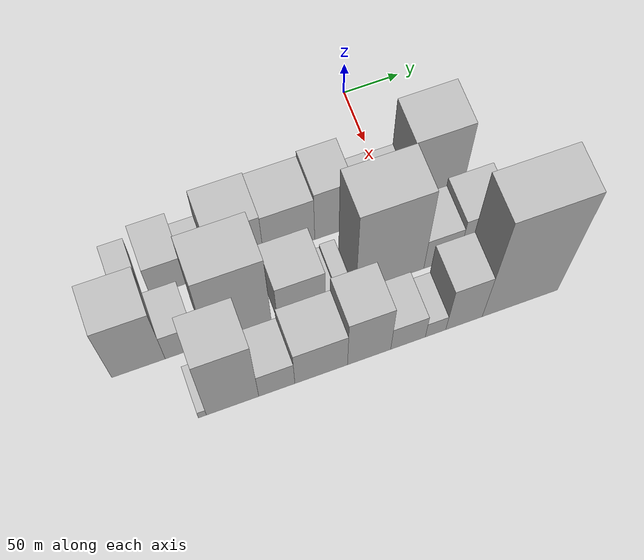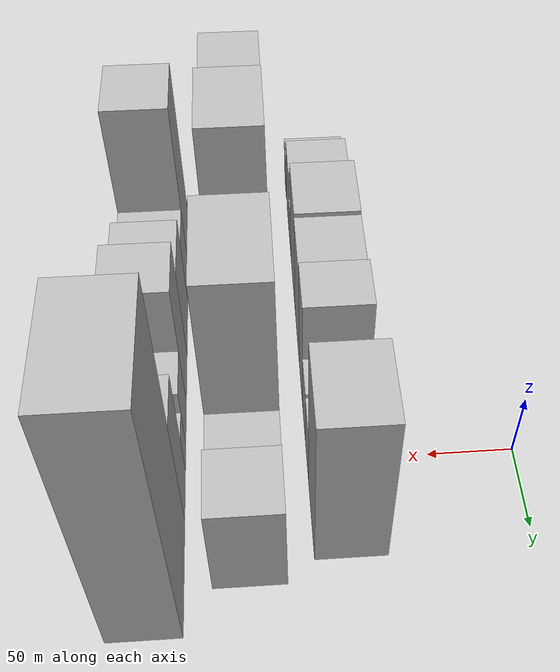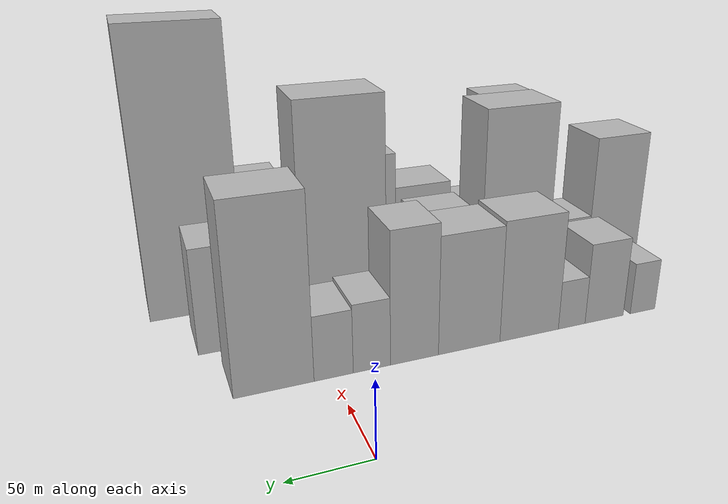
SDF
<sdf version="1.6">
 <world name="default">
  <model name="building_10">
   <static>1</static>
   <pose>100.0000 -229.9270 0 0.000000 0.000000 0.000000</pose>
   <link name="link">
    <pose>0 0 19.50 0 0 0</pose>
    <collision name="collision"><geometry><box><size>40.0000 21.1032 39.0000</size></box></geometry></collision>
    <visual name="visual">
     <cast_shadows>0</cast_shadows>
     <geometry><box><size>40.0000 21.1032 39.0000</size></box></geometry>
     <material>
      <script>
       <uri>model://HANNAS_wall/materials/scripts</uri>
       <uri>model://HANNAS_wall/materials/textures</uri>
       <name>vrc/HANNAS_wall</name>
      </script>
     </material>
    </visual>
   </link>
  </model>
  <model name="building_11">
   <static>1</static>
   <pose>100.0000 -197.5633 0 0.000000 0.000000 0.000000</pose>
   <link name="link">
    <pose>0 0 30.00 0 0 0</pose>
    <collision name="collision"><geometry><box><size>40.0000 31.6240 60.0000</size></box></geometry></collision>
    <visual name="visual">
     <cast_shadows>0</cast_shadows>
     <geometry><box><size>40.0000 31.6240 60.0000</size></box></geometry>
     <material>
      <script>
       <uri>model://HANNAS_wall/materials/scripts</uri>
       <uri>model://HANNAS_wall/materials/textures</uri>
       <name>vrc/HANNAS_wall</name>
      </script>
     </material>
    </visual>
   </link>
  </model>
  <model name="building_12">
   <static>1</static>
   <pose>100.0000 -171.0606 0 0.000000 0.000000 0.000000</pose>
   <link name="link">
    <pose>0 0 18.00 0 0 0</pose>
    <collision name="collision"><geometry><box><size>40.0000 21.3814 36.0000</size></box></geometry></collision>
    <visual name="visual">
     <cast_shadows>0</cast_shadows>
     <geometry><box><size>40.0000 21.3814 36.0000</size></box></geometry>
     <material>
      <script>
       <uri>model://HANNAS_wall/materials/scripts</uri>
       <uri>model://HANNAS_wall/materials/textures</uri>
       <name>vrc/HANNAS_wall</name>
      </script>
     </material>
    </visual>
   </link>
  </model>
  <model name="building_13">
   <static>1</static>
   <pose>100.0000 -137.8540 0 0.000000 0.000000 0.000000</pose>
   <link name="link">
    <pose>0 0 43.50 0 0 0</pose>
    <collision name="collision"><geometry><box><size>40.0000 45.0318 87.0000</size></box></geometry></collision>
    <visual name="visual">
     <cast_shadows>0</cast_shadows>
     <geometry><box><size>40.0000 45.0318 87.0000</size></box></geometry>
     <material>
      <script>
       <uri>model://HANNAS_wall/materials/scripts</uri>
       <uri>model://HANNAS_wall/materials/textures</uri>
       <name>vrc/HANNAS_wall</name>
      </script>
     </material>
    </visual>
   </link>
  </model>
  <model name="building_14">
   <static>1</static>
   <pose>100.0000 -93.0057 0 0.000000 0.000000 0.000000</pose>
   <link name="link">
    <pose>0 0 42.00 0 0 0</pose>
    <collision name="collision"><geometry><box><size>40.0000 44.6648 84.0000</size></box></geometry></collision>
    <visual name="visual">
     <cast_shadows>0</cast_shadows>
     <geometry><box><size>40.0000 44.6648 84.0000</size></box></geometry>
     <material>
      <script>
       <uri>model://HANNAS_wall/materials/scripts</uri>
       <uri>model://HANNAS_wall/materials/textures</uri>
       <name>vrc/HANNAS_wall</name>
      </script>
     </material>
    </visual>
   </link>
  </model>
  <model name="building_15">
   <static>1</static>
   <pose>100.0000 -54.0988 0 0.000000 0.000000 0.000000</pose>
   <link name="link">
    <pose>0 0 46.50 0 0 0</pose>
    <collision name="collision"><geometry><box><size>40.0000 33.1490 93.0000</size></box></geometry></collision>
    <visual name="visual">
     <cast_shadows>0</cast_shadows>
     <geometry><box><size>40.0000 33.1490 93.0000</size></box></geometry>
     <material>
      <script>
       <uri>model://HANNAS_wall/materials/scripts</uri>
       <uri>model://HANNAS_wall/materials/textures</uri>
       <name>vrc/HANNAS_wall</name>
      </script>
     </material>
    </visual>
   </link>
  </model>
  <model name="building_16">
   <static>1</static>
   <pose>100.0000 -25.1981 0 0.000000 0.000000 0.000000</pose>
   <link name="link">
    <pose>0 0 24.00 0 0 0</pose>
    <collision name="collision"><geometry><box><size>40.0000 24.6524 48.0000</size></box></geometry></collision>
    <visual name="visual">
     <cast_shadows>0</cast_shadows>
     <geometry><box><size>40.0000 24.6524 48.0000</size></box></geometry>
     <material>
      <script>
       <uri>model://HANNAS_wall/materials/scripts</uri>
       <uri>model://HANNAS_wall/materials/textures</uri>
       <name>vrc/HANNAS_wall</name>
      </script>
     </material>
    </visual>
   </link>
  </model>
  <model name="building_17">
   <static>1</static>
   <pose>100.0000 -0.3013 0 0.000000 0.000000 0.000000</pose>
   <link name="link">
    <pose>0 0 22.50 0 0 0</pose>
    <collision name="collision"><geometry><box><size>40.0000 25.1413 45.0000</size></box></geometry></collision>
    <visual name="visual">
     <cast_shadows>0</cast_shadows>
     <geometry><box><size>40.0000 25.1413 45.0000</size></box></geometry>
     <material>
      <script>
       <uri>model://HANNAS_wall/materials/scripts</uri>
       <uri>model://HANNAS_wall/materials/textures</uri>
       <name>vrc/HANNAS_wall</name>
      </script>
     </material>
    </visual>
   </link>
  </model>
  <model name="building_18">
   <static>1</static>
   <pose>100.0000 36.9575 0 0.000000 0.000000 0.000000</pose>
   <link name="link">
    <pose>0 0 63.00 0 0 0</pose>
    <collision name="collision"><geometry><box><size>40.0000 49.3762 126.0000</size></box></geometry></collision>
    <visual name="visual">
     <cast_shadows>0</cast_shadows>
     <geometry><box><size>40.0000 49.3762 126.0000</size></box></geometry>
     <material>
      <script>
       <uri>model://HANNAS_wall/materials/scripts</uri>
       <uri>model://HANNAS_wall/materials/textures</uri>
       <name>vrc/HANNAS_wall</name>
      </script>
     </material>
    </visual>
   </link>
  </model>
  <model name="building_47">
   <static>1</static>
   <pose>155.0000 -240.4129 0 0.000000 0.000000 0.000000</pose>
   <link name="link">
    <pose>0 0 57.00 0 0 0</pose>
    <collision name="collision"><geometry><box><size>40.0000 44.6639 114.0000</size></box></geometry></collision>
    <visual name="visual">
     <cast_shadows>0</cast_shadows>
     <geometry><box><size>40.0000 44.6639 114.0000</size></box></geometry>
     <material>
      <script>
       <uri>model://HANNAS_wall/materials/scripts</uri>
       <uri>model://HANNAS_wall/materials/textures</uri>
       <name>vrc/HANNAS_wall</name>
      </script>
     </material>
    </visual>
   </link>
  </model>
  <model name="building_48">
   <static>1</static>
   <pose>155.0000 -204.3218 0 0.000000 0.000000 0.000000</pose>
   <link name="link">
    <pose>0 0 27.00 0 0 0</pose>
    <collision name="collision"><geometry><box><size>40.0000 27.5182 54.0000</size></box></geometry></collision>
    <visual name="visual">
     <cast_shadows>0</cast_shadows>
     <geometry><box><size>40.0000 27.5182 54.0000</size></box></geometry>
     <material>
      <script>
       <uri>model://HANNAS_wall/materials/scripts</uri>
       <uri>model://HANNAS_wall/materials/textures</uri>
       <name>vrc/HANNAS_wall</name>
      </script>
     </material>
    </visual>
   </link>
  </model>
  <model name="building_49">
   <static>1</static>
   <pose>155.0000 -155.7295 0 0.000000 0.000000 0.000000</pose>
   <link name="link">
    <pose>0 0 72.00 0 0 0</pose>
    <collision name="collision"><geometry><box><size>40.0000 55.6664 144.0000</size></box></geometry></collision>
    <visual name="visual">
     <cast_shadows>0</cast_shadows>
     <geometry><box><size>40.0000 55.6664 144.0000</size></box></geometry>
     <material>
      <script>
       <uri>model://HANNAS_wall/materials/scripts</uri>
       <uri>model://HANNAS_wall/materials/textures</uri>
       <name>vrc/HANNAS_wall</name>
      </script>
     </material>
    </visual>
   </link>
  </model>
  <model name="building_50">
   <static>1</static>
   <pose>155.0000 -102.1150 0 0.000000 0.000000 0.000000</pose>
   <link name="link">
    <pose>0 0 36.00 0 0 0</pose>
    <collision name="collision"><geometry><box><size>40.0000 41.5627 72.0000</size></box></geometry></collision>
    <visual name="visual">
     <cast_shadows>0</cast_shadows>
     <geometry><box><size>40.0000 41.5627 72.0000</size></box></geometry>
     <material>
      <script>
       <uri>model://HANNAS_wall/materials/scripts</uri>
       <uri>model://HANNAS_wall/materials/textures</uri>
       <name>vrc/HANNAS_wall</name>
      </script>
     </material>
    </visual>
   </link>
  </model>
  <model name="building_51">
   <static>1</static>
   <pose>155.0000 -76.7715 0 0.000000 0.000000 0.000000</pose>
   <link name="link">
    <pose>0 0 10.50 0 0 0</pose>
    <collision name="collision"><geometry><box><size>40.0000 9.1243 21.0000</size></box></geometry></collision>
    <visual name="visual">
     <cast_shadows>0</cast_shadows>
     <geometry><box><size>40.0000 9.1243 21.0000</size></box></geometry>
     <material>
      <script>
       <uri>model://HANNAS_wall/materials/scripts</uri>
       <uri>model://HANNAS_wall/materials/textures</uri>
       <name>vrc/HANNAS_wall</name>
      </script>
     </material>
    </visual>
   </link>
  </model>
  <model name="building_52">
   <static>1</static>
   <pose>155.0000 -65.6060 0 0.000000 0.000000 0.000000</pose>
   <link name="link">
    <pose>0 0 13.50 0 0 0</pose>
    <collision name="collision"><geometry><box><size>40.0000 13.2067 27.0000</size></box></geometry></collision>
    <visual name="visual">
     <cast_shadows>0</cast_shadows>
     <geometry><box><size>40.0000 13.2067 27.0000</size></box></geometry>
     <material>
      <script>
       <uri>model://HANNAS_wall/materials/scripts</uri>
       <uri>model://HANNAS_wall/materials/textures</uri>
       <name>vrc/HANNAS_wall</name>
      </script>
     </material>
    </visual>
   </link>
  </model>
  <model name="building_53">
   <static>1</static>
   <pose>155.0000 -25.1493 0 0.000000 0.000000 0.000000</pose>
   <link name="link">
    <pose>0 0 81.00 0 0 0</pose>
    <collision name="collision"><geometry><box><size>40.0000 59.7066 162.0000</size></box></geometry></collision>
    <visual name="visual">
     <cast_shadows>0</cast_shadows>
     <geometry><box><size>40.0000 59.7066 162.0000</size></box></geometry>
     <material>
      <script>
       <uri>model://HANNAS_wall/materials/scripts</uri>
       <uri>model://HANNAS_wall/materials/textures</uri>
       <name>vrc/HANNAS_wall</name>
      </script>
     </material>
    </visual>
   </link>
  </model>
  <model name="building_54">
   <static>1</static>
   <pose>155.0000 20.3840 0 0.000000 0.000000 0.000000</pose>
   <link name="link">
    <pose>0 0 30.00 0 0 0</pose>
    <collision name="collision"><geometry><box><size>40.0000 31.3599 60.0000</size></box></geometry></collision>
    <visual name="visual">
     <cast_shadows>0</cast_shadows>
     <geometry><box><size>40.0000 31.3599 60.0000</size></box></geometry>
     <material>
      <script>
       <uri>model://HANNAS_wall/materials/scripts</uri>
       <uri>model://HANNAS_wall/materials/textures</uri>
       <name>vrc/HANNAS_wall</name>
      </script>
     </material>
    </visual>
   </link>
  </model>
  <model name="building_55">
   <static>1</static>
   <pose>155.0000 55.3237 0 0.000000 0.000000 0.000000</pose>
   <link name="link">
    <pose>0 0 37.50 0 0 0</pose>
    <collision name="collision"><geometry><box><size>40.0000 38.5194 75.0000</size></box></geometry></collision>
    <visual name="visual">
     <cast_shadows>0</cast_shadows>
     <geometry><box><size>40.0000 38.5194 75.0000</size></box></geometry>
     <material>
      <script>
       <uri>model://HANNAS_wall/materials/scripts</uri>
       <uri>model://HANNAS_wall/materials/textures</uri>
       <name>vrc/HANNAS_wall</name>
      </script>
     </material>
    </visual>
   </link>
  </model>
  <model name="building_80">
   <static>1</static>
   <pose>210.0000 -204.8326 0 0.000000 0.000000 0.000000</pose>
   <link name="link">
    <pose>0 0 7.50 0 0 0</pose>
    <collision name="collision"><geometry><box><size>40.0000 6.6311 15.0000</size></box></geometry></collision>
    <visual name="visual">
     <cast_shadows>0</cast_shadows>
     <geometry><box><size>40.0000 6.6311 15.0000</size></box></geometry>
     <material>
      <script>
       <uri>model://HANNAS_wall/materials/scripts</uri>
       <uri>model://HANNAS_wall/materials/textures</uri>
       <name>vrc/HANNAS_wall</name>
      </script>
     </material>
    </visual>
   </link>
  </model>
  <model name="building_81">
   <static>1</static>
   <pose>210.0000 -179.6820 0 0.000000 0.000000 0.000000</pose>
   <link name="link">
    <pose>0 0 67.50 0 0 0</pose>
    <collision name="collision"><geometry><box><size>40.0000 43.6701 135.0000</size></box></geometry></collision>
    <visual name="visual">
     <cast_shadows>0</cast_shadows>
     <geometry><box><size>40.0000 43.6701 135.0000</size></box></geometry>
     <material>
      <script>
       <uri>model://HANNAS_wall/materials/scripts</uri>
       <uri>model://HANNAS_wall/materials/textures</uri>
       <name>vrc/HANNAS_wall</name>
      </script>
     </material>
    </visual>
   </link>
  </model>
  <model name="building_82">
   <static>1</static>
   <pose>210.0000 -142.6595 0 0.000000 0.000000 0.000000</pose>
   <link name="link">
    <pose>0 0 27.00 0 0 0</pose>
    <collision name="collision"><geometry><box><size>40.0000 30.3748 54.0000</size></box></geometry></collision>
    <visual name="visual">
     <cast_shadows>0</cast_shadows>
     <geometry><box><size>40.0000 30.3748 54.0000</size></box></geometry>
     <material>
      <script>
       <uri>model://HANNAS_wall/materials/scripts</uri>
       <uri>model://HANNAS_wall/materials/textures</uri>
       <name>vrc/HANNAS_wall</name>
      </script>
     </material>
    </visual>
   </link>
  </model>
  <model name="building_83">
   <static>1</static>
   <pose>210.0000 -105.1425 0 0.000000 0.000000 0.000000</pose>
   <link name="link">
    <pose>0 0 37.50 0 0 0</pose>
    <collision name="collision"><geometry><box><size>40.0000 44.6591 75.0000</size></box></geometry></collision>
    <visual name="visual">
     <cast_shadows>0</cast_shadows>
     <geometry><box><size>40.0000 44.6591 75.0000</size></box></geometry>
     <material>
      <script>
       <uri>model://HANNAS_wall/materials/scripts</uri>
       <uri>model://HANNAS_wall/materials/textures</uri>
       <name>vrc/HANNAS_wall</name>
      </script>
     </material>
    </visual>
   </link>
  </model>
  <model name="building_84">
   <static>1</static>
   <pose>210.0000 -64.2749 0 0.000000 0.000000 0.000000</pose>
   <link name="link">
    <pose>0 0 51.00 0 0 0</pose>
    <collision name="collision"><geometry><box><size>40.0000 37.0761 102.0000</size></box></geometry></collision>
    <visual name="visual">
     <cast_shadows>0</cast_shadows>
     <geometry><box><size>40.0000 37.0761 102.0000</size></box></geometry>
     <material>
      <script>
       <uri>model://HANNAS_wall/materials/scripts</uri>
       <uri>model://HANNAS_wall/materials/textures</uri>
       <name>vrc/HANNAS_wall</name>
      </script>
     </material>
    </visual>
   </link>
  </model>
  <model name="building_85">
   <static>1</static>
   <pose>210.0000 -30.7901 0 0.000000 0.000000 0.000000</pose>
   <link name="link">
    <pose>0 0 25.50 0 0 0</pose>
    <collision name="collision"><geometry><box><size>40.0000 29.8936 51.0000</size></box></geometry></collision>
    <visual name="visual">
     <cast_shadows>0</cast_shadows>
     <geometry><box><size>40.0000 29.8936 51.0000</size></box></geometry>
     <material>
      <script>
       <uri>model://HANNAS_wall/materials/scripts</uri>
       <uri>model://HANNAS_wall/materials/textures</uri>
       <name>vrc/HANNAS_wall</name>
      </script>
     </material>
    </visual>
   </link>
  </model>
  <model name="building_86">
   <static>1</static>
   <pose>210.0000 -6.9695 0 0.000000 0.000000 0.000000</pose>
   <link name="link">
    <pose>0 0 16.50 0 0 0</pose>
    <collision name="collision"><geometry><box><size>40.0000 17.7476 33.0000</size></box></geometry></collision>
    <visual name="visual">
     <cast_shadows>0</cast_shadows>
     <geometry><box><size>40.0000 17.7476 33.0000</size></box></geometry>
     <material>
      <script>
       <uri>model://HANNAS_wall/materials/scripts</uri>
       <uri>model://HANNAS_wall/materials/textures</uri>
       <name>vrc/HANNAS_wall</name>
      </script>
     </material>
    </visual>
   </link>
  </model>
  <model name="building_87">
   <static>1</static>
   <pose>210.0000 17.8559 0 0.000000 0.000000 0.000000</pose>
   <link name="link">
    <pose>0 0 46.50 0 0 0</pose>
    <collision name="collision"><geometry><box><size>40.0000 31.9033 93.0000</size></box></geometry></collision>
    <visual name="visual">
     <cast_shadows>0</cast_shadows>
     <geometry><box><size>40.0000 31.9033 93.0000</size></box></geometry>
     <material>
      <script>
       <uri>model://HANNAS_wall/materials/scripts</uri>
       <uri>model://HANNAS_wall/materials/textures</uri>
       <name>vrc/HANNAS_wall</name>
      </script>
     </material>
    </visual>
   </link>
  </model>
  <model name="building_88">
   <static>1</static>
   <pose>210.0000 67.0490 0 0.000000 0.000000 0.000000</pose>
   <link name="link">
    <pose>0 0 102.00 0 0 0</pose>
    <collision name="collision"><geometry><box><size>40.0000 66.4829 204.0000</size></box></geometry></collision>
    <visual name="visual">
     <cast_shadows>0</cast_shadows>
     <geometry><box><size>40.0000 66.4829 204.0000</size></box></geometry>
     <material>
      <script>
       <uri>model://HANNAS_wall/materials/scripts</uri>
       <uri>model://HANNAS_wall/materials/textures</uri>
       <name>vrc/HANNAS_wall</name>
      </script>
     </material>
    </visual>
   </link>
  </model>
 </world>
</sdf>
